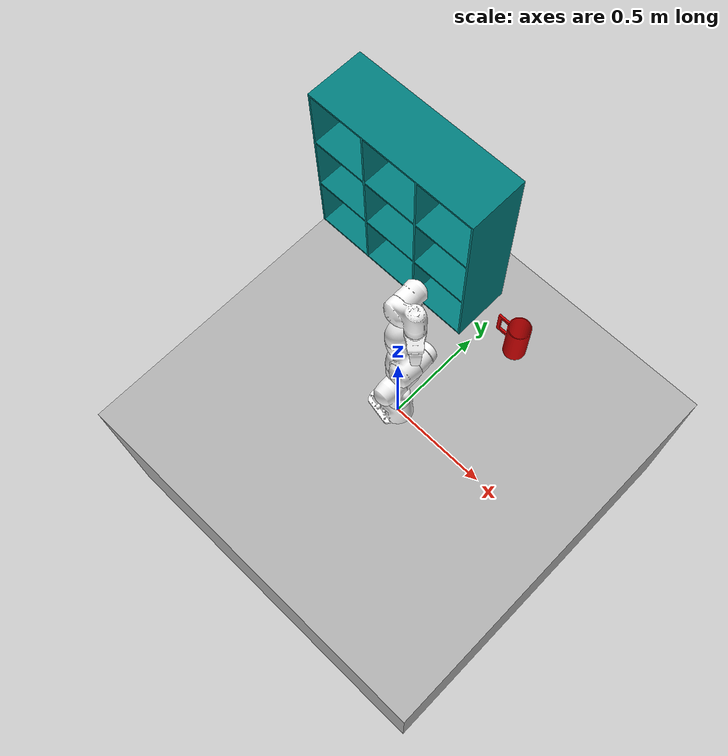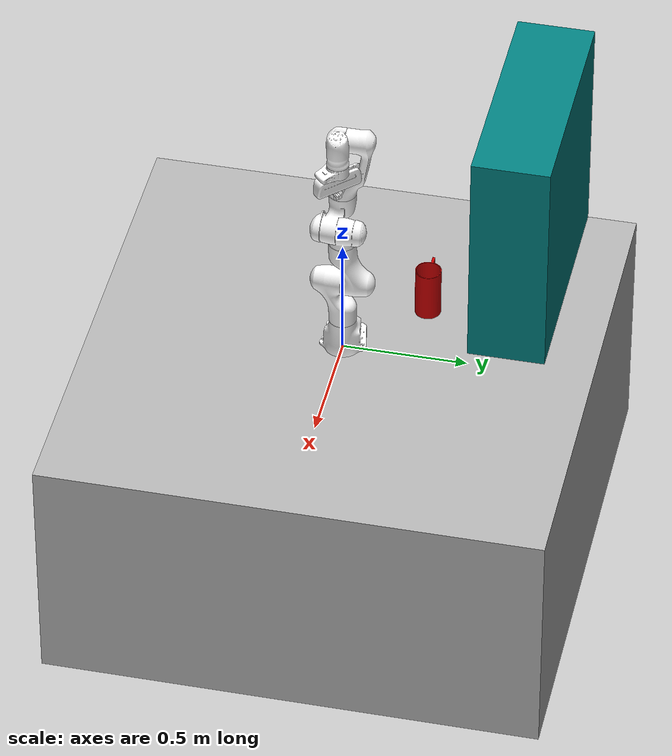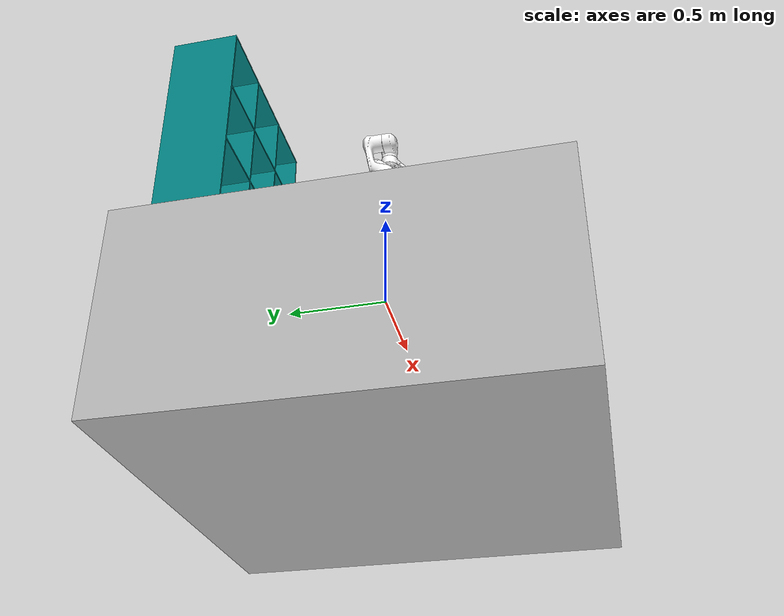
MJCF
<mujoco model="panda">
  <default>
    <default class="robot">
      <joint limited="true" damping="0.01" armature="0.01" frictionloss="0.01" actuatorfrcrange="-1000 1000" />
      <default class="visual">
        <geom material="visualgeom" contype="0" conaffinity="0" group="2" />
      </default>
      <default class="collision">
        <geom condim="6" conaffinity="15" friction="0.8 0.02 0.01" solimp="0.015 1 0.036" group="3" />
      </default>
    </default>
  </default>

  <compiler angle="radian" meshdir="meshes" />

  <option integrator="implicitfast" cone="elliptic" impratio="100" />

  <visual>
    <global ellipsoidinertia="true" />
  </visual>

  <asset>
    <material name="panda_white" rgba="1. 1. 1. 1." />
    <material name="default_material" rgba="0.7 0.7 0.7 1" />
    <material name="mug1_material" rgba="0.8 0.0 0.0 1"/>
    <material name="shelf_material" rgba="0.0 0.5 0.5 1"/>
    <mesh name="link0.obj" file="link0.obj" />
    <mesh name="link1.obj" file="link1.obj" />
    <mesh name="link2.obj" file="link2.obj" />
    <mesh name="link3.obj" file="link3.obj" />
    <mesh name="link4.obj" file="link4.obj" />
    <mesh name="link5.obj" file="link5.obj" />
    <mesh name="link6.obj" file="link6.obj" />
    <mesh name="link7.obj" file="link7.obj" />
    <mesh name="hand.obj" file="hand.obj" />
    <mesh name="finger.obj" file="finger.obj" />
    <mesh name="mug1" file="mug.obj" scale="0.01 0.01 0.01"/>
    <mesh name="shelf" file="shelf.obj" scale="0.01 0.01 0.01"/>
  </asset>

  <worldbody>
    <light name="top" pos="0 0 30"/>
    <camera name="front_view" pos="0.0 -2.5 1.7" quat="0.8660254037844386 0.5 0.0 0.0" mode="fixed"/>
    <body name="table" pos="0.0 0 -0.5">
      <geom name="table_collision" type="box" size="1 1 0.5" class="collision" />
      <geom name="table_visual" material="default_material" type="box" size="1 1 0.5" class="visual" />
    </body>

    <body name="panda_link0" childclass="robot" pos="0.0 0.0 0.0">
      <freejoint name="floating_base" />
      <geom name="panda_link0_collision" type="mesh" mesh="link0.obj" class="collision" />
      <geom name="panda_link0_visual" material="panda_white" type="mesh" mesh="link0.obj" class="visual" />
      <body name="panda_link1" pos="0 0 0.333">
        <joint name="panda_joint1" type="hinge" range="-2.9671 2.9671" axis="0 0 1" />
        <geom name="panda_link1_collision" type="mesh" mesh="link1.obj" class="collision" />
        <geom name="panda_link1_visual" material="panda_white" type="mesh" mesh="link1.obj" class="visual" />
        <body name="panda_link2" quat="0.7071067811882787 -0.7071067811848163 0.0 0.0">
          <joint name="panda_joint2" type="hinge" range="-1.8326 1.8326" axis="0 0 1" />
          <geom name="panda_link2_collision" type="mesh" mesh="link2.obj" class="collision" />
          <geom name="panda_link2_visual" material="panda_white" type="mesh" mesh="link2.obj" class="visual" />
          <body name="panda_link3" pos="0 -0.316 0" quat="0.7071067811882787 0.7071067811848163 0.0 0.0">
            <joint name="panda_joint3" type="hinge" range="-2.9671 2.9671" axis="0 0 1" />
            <geom name="panda_link3_collision" type="mesh" mesh="link3.obj" class="collision" />
            <geom name="panda_link3_visual" material="panda_white" type="mesh" mesh="link3.obj" class="visual" />
            <body name="panda_link4" pos="0.0825 0 0" quat="0.7071067811882787 0.7071067811848163 0.0 0.0">
              <joint name="panda_joint4" type="hinge" range="-3.1416 0.0" axis="0 0 1" />
              <geom name="panda_link4_collision" type="mesh" mesh="link4.obj" class="collision" />
              <geom name="panda_link4_visual" material="panda_white" type="mesh" mesh="link4.obj" class="visual" />
              <body name="panda_link5" pos="-0.0825 0.384 0" quat="0.7071067811882787 -0.7071067811848163 0.0 0.0">
                <joint name="panda_joint5" type="hinge" range="-2.9671 2.9671" axis="0 0 1" />
                <geom name="panda_link5_collision" type="mesh" mesh="link5.obj" class="collision" />
                <geom name="panda_link5_visual" material="panda_white" type="mesh" mesh="link5.obj" class="visual" />
                <body name="panda_link6" quat="0.7071067811882787 0.7071067811848163 0.0 0.0">
                  <joint name="panda_joint6" type="hinge" range="-0.0873 3.8223" axis="0 0 1" />
                  <geom name="panda_link6_collision" type="mesh" mesh="link6.obj" class="collision" />
                  <geom name="panda_link6_visual" material="panda_white" type="mesh" mesh="link6.obj" class="visual" />
                  <body name="panda_link7" pos="0.088 0 0" quat="0.7071067811882787 0.7071067811848163 0.0 0.0">
                    <joint name="panda_joint7" type="hinge" range="-2.9671 2.9671" axis="0 0 1" />
                    <geom name="panda_link7_collision" type="mesh" mesh="link7.obj" class="collision" />
                    <geom name="panda_link7_visual" material="panda_white" type="mesh" mesh="link7.obj" class="visual" />
                    <body name="panda_link8" pos="0 0 0.107">
                      <body name="panda_hand" quat="0.9238795325113726 0.0 0.0 -0.38268343236488267">
                        <geom name="panda_hand_collision" type="mesh" mesh="hand.obj" class="collision" />
                        <geom name="panda_hand_visual" material="panda_white" type="mesh" mesh="hand.obj" class="visual" />
                        <body name="panda_leftfinger" pos="0 0 0.0584">
                          <joint name="panda_finger_joint1" type="slide" range="0.0 0.04" axis="0 1 0" />
                          <geom name="panda_leftfinger_collision" type="mesh" mesh="finger.obj" class="collision" friction="2.0 0.01 0.0001" contype="1" conaffinity="1"/>
                          <geom name="panda_leftfinger_visual" material="panda_white" type="mesh" mesh="finger.obj" class="visual" />
                        </body>
                        <body name="panda_rightfinger" pos="0 0 0.0584">
                          <joint name="panda_finger_joint2" type="slide" range="0.0 0.04" axis="0 -1 0" />
                          <geom name="panda_rightfinger_collision" quat="-1.0341155355510722e-13 -0.0 0.0 1.0" type="mesh" mesh="finger.obj" class="collision" friction="2.0 0.01 0.0001" contype="1" conaffinity="1"/>
                          <geom name="panda_rightfinger_visual" quat="-1.0341155355510722e-13 -0.0 0.0 1.0" material="panda_white" type="mesh" mesh="finger.obj" class="visual" />
                        </body>
                      </body>
                    </body>
                  </body>
                </body>
              </body>
            </body>
          </body>
        </body>
      </body>
      <site name="panda_link0_site" />
    </body>
    <body name="mug1" pos="0.3 0.4 0.5" euler="0 0 3.14">
      <freejoint />
      <geom name="mug1_collision" type="mesh" mesh="mug1" class="collision" density="100" contype="1" conaffinity="1" friction="1 0.01 0.0001"/>
      <geom name="mug1_visual" material="mug1_material" type="mesh" mesh="mug1" class="visual" mass="0" density="0"/>
    </body>
    <body name="shelf" pos="-1 0.8 0.0" euler="0 0 3.14">
      <freejoint />
      <geom name="shelf_collision" type="mesh" mesh="shelf" class="collision" density="100" contype="1" conaffinity="1" friction="1 0.01 0.0001"/>
      <geom name="shelf_visual" material="shelf_material" type="mesh" mesh="shelf" class="visual" mass="0" density="0"/>
    </body>

  </worldbody>

  <actuator>
    <position name="panda_joint1_ctrl" joint="panda_joint1" kp="1000" forcerange="-87.00000000 87.00000000" forcelimited="true" ctrlrange="-2.9671 2.9671" ctrllimited="true" class="robot" />
    <position name="panda_joint2_ctrl" joint="panda_joint2" kp="1000" forcerange="-87.00000000 87.00000000" forcelimited="true" ctrlrange="-1.8326 1.8326" ctrllimited="true" class="robot" />
    <position name="panda_joint3_ctrl" joint="panda_joint3" kp="1000" forcerange="-87.00000000 87.00000000" forcelimited="true" ctrlrange="-2.9671 2.9671" ctrllimited="true" class="robot" />
    <position name="panda_joint4_ctrl" joint="panda_joint4" kp="1000" forcerange="-87.00000000 87.00000000" forcelimited="true" ctrlrange="-3.1416 0.0" ctrllimited="true" class="robot" />
    <position name="panda_joint5_ctrl" joint="panda_joint5" kp="1000" forcerange="-12.00000000 12.00000000" forcelimited="true" ctrlrange="-2.9671 2.9671" ctrllimited="true" class="robot" />
    <position name="panda_joint6_ctrl" joint="panda_joint6" kp="1000" forcerange="-12.00000000 12.00000000" forcelimited="true" ctrlrange="-0.0873 3.8223" ctrllimited="true" class="robot" />
    <position name="panda_joint7_ctrl" joint="panda_joint7" kp="1000" forcerange="-12.00000000 12.00000000" forcelimited="true" ctrlrange="-2.9671 2.9671" ctrllimited="true" class="robot" />

    <position name="panda_finger_joint1_ctrl" joint="panda_finger_joint1" kp="1000" forcerange="-20.00000000 20.00000000" forcelimited="true" ctrlrange="0.0 0.04" ctrllimited="true" class="robot" />
    <position name="panda_finger_joint2_ctrl" joint="panda_finger_joint2" kp="1000" forcerange="-20.00000000 20.00000000" forcelimited="true" ctrlrange="0.0 0.04" ctrllimited="true" class="robot" />
  </actuator>

  <contact>
    <exclude body1="panda_link0" body2="panda_link1" />
    <exclude body1="panda_link1" body2="panda_link2" />
    <exclude body1="panda_link2" body2="panda_link3" />
    <exclude body1="panda_link3" body2="panda_link4" />
    <exclude body1="panda_link4" body2="panda_link5" />
    <exclude body1="panda_link5" body2="panda_link6" />
    <exclude body1="panda_link6" body2="panda_link7" />
    <exclude body1="panda_hand" body2="panda_leftfinger" />
    <exclude body1="panda_hand" body2="panda_rightfinger" />
  </contact>

  <sensor>
    <framepos name="base_link_pos" objtype="site" objname="panda_link0_site" />
    <framequat name="base_link_quat" objtype="site" objname="panda_link0_site" />
    <framelinvel name="base_link_vel" objtype="site" objname="panda_link0_site" />
    <frameangvel name="base_link_ang_vel" objtype="site" objname="panda_link0_site" />
  </sensor>

  <equality>
    <weld body1="panda_link0" body2="table"/>
  </equality>
</mujoco>
